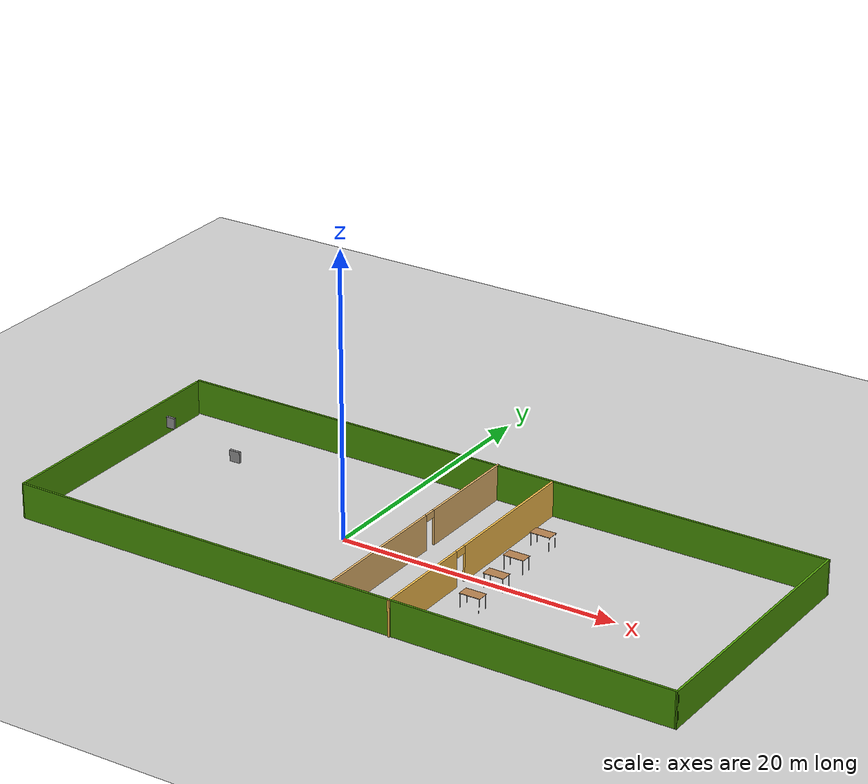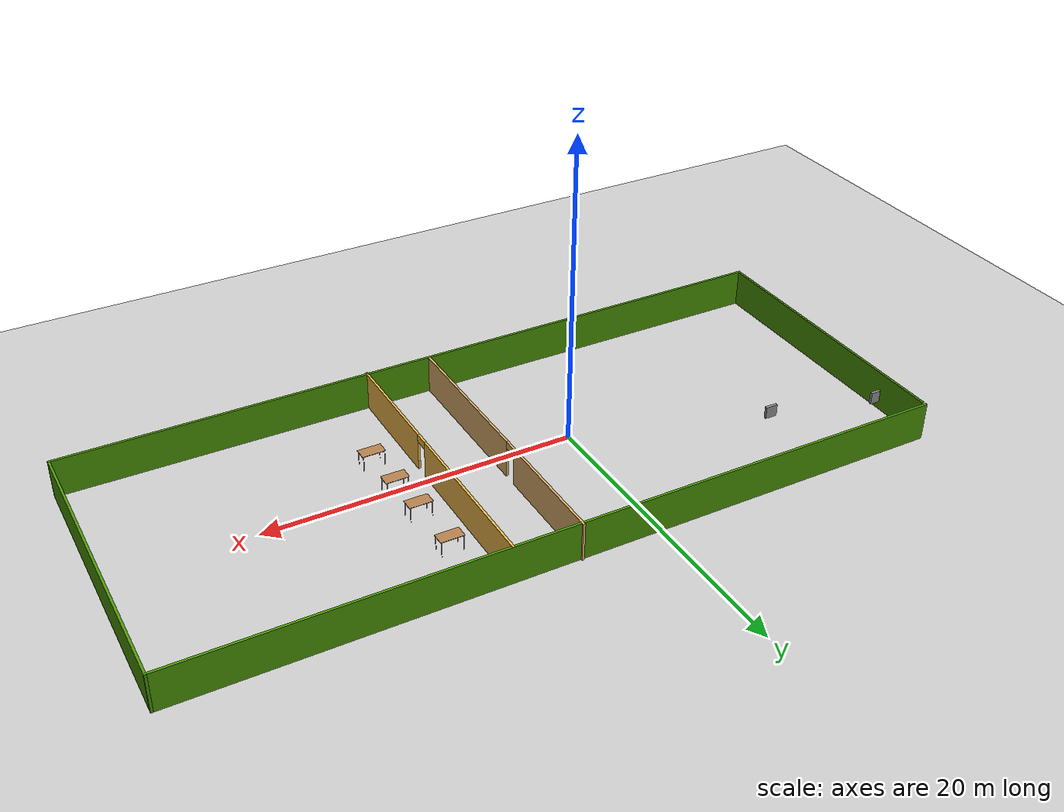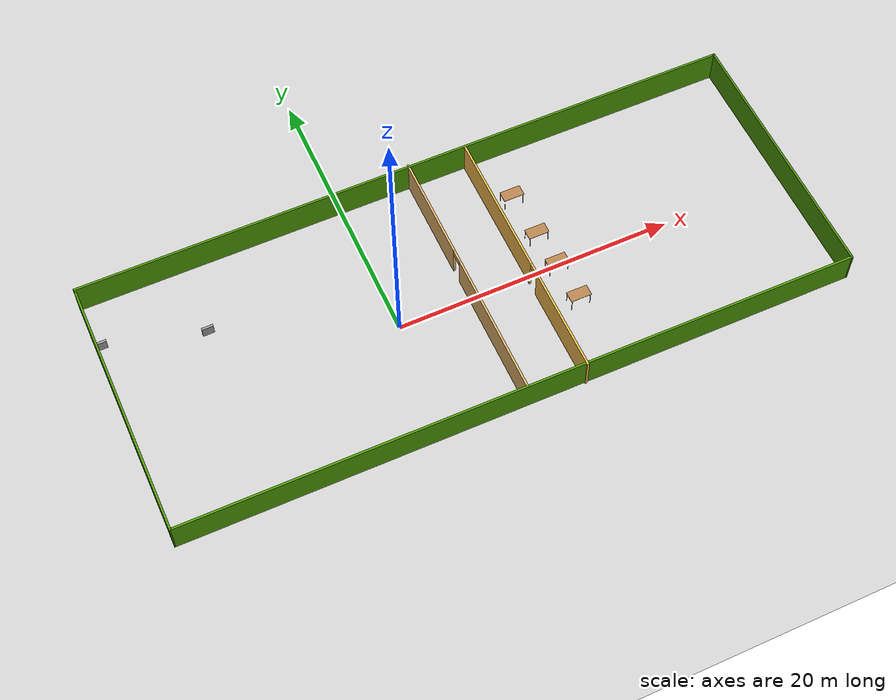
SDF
<sdf version="1.6">
 <world name="default">
  <model name="ground_plane">
   <static>1</static>
   <link name="link">
    <collision name="collision">
     <geometry><plane><normal>0 0 1</normal><size>100 100</size></plane></geometry>
     <surface>
      <contact><collide_bitmask>65535</collide_bitmask></contact>
      <friction><ode><mu>100</mu><mu2>50</mu2></ode></friction>
     </surface>
    </collision>
    <visual name="visual">
     <cast_shadows>0</cast_shadows>
     <geometry><plane><normal>0 0 1</normal><size>100 100</size></plane></geometry>
     <material>
      <script><uri>file://media/materials/scripts/gazebo.material</uri><name>Gazebo/Grey</name></script>
     </material>
    </visual>
   </link>
  </model>
  <model name="model">
   <pose>5.10532 0.675566 0 0 -0 0</pose>
   <link name="Wall_34">
    <collision name="Wall_34_Collision">
     <geometry><box><size>18.75 0.15 2.5</size></box></geometry>
     <pose>0 0 1.25 0 -0 0</pose>
    </collision>
    <visual name="Wall_34_Visual">
     <pose>0 0 1.25 0 -0 0</pose>
     <geometry><box><size>18.75 0.15 2.5</size></box></geometry>
     <material>
      <script><uri>file://media/materials/scripts/gazebo.material</uri><name>Gazebo/Grey</name></script>
      <ambient>0.305882 0.603922 0.0235294 1</ambient>
     </material>
     <meta><layer>0</layer></meta>
    </visual>
    <pose>-24.0501 -0.098528 0 0 -0 -1.5708</pose>
   </link>
   <link name="Wall_35">
    <collision name="Wall_35_Collision">
     <geometry><box><size>48.2504 0.15 2.5</size></box></geometry>
     <pose>0 0 1.25 0 -0 0</pose>
    </collision>
    <visual name="Wall_35_Visual">
     <pose>0 0 1.25 0 -0 0</pose>
     <geometry><box><size>48.2504 0.15 2.5</size></box></geometry>
     <material>
      <script><uri>file://media/materials/scripts/gazebo.material</uri><name>Gazebo/Grey</name></script>
      <ambient>0.305882 0.603922 0.0235294 1</ambient>
     </material>
     <meta><layer>0</layer></meta>
    </visual>
    <pose>0 -9.49677 0 0 -0 -0.004085</pose>
   </link>
   <link name="Wall_36">
    <collision name="Wall_36_Collision">
     <geometry><box><size>19.25 0.15 2.5</size></box></geometry>
     <pose>0 0 1.25 0 -0 0</pose>
    </collision>
    <visual name="Wall_36_Visual">
     <pose>0 0 1.25 0 -0 0</pose>
     <geometry><box><size>19.25 0.15 2.5</size></box></geometry>
     <material>
      <script><uri>file://media/materials/scripts/gazebo.material</uri><name>Gazebo/Grey</name></script>
      <ambient>0.305882 0.603922 0.0235294 1</ambient>
     </material>
     <meta><layer>0</layer></meta>
    </visual>
    <pose>24.0501 -0.045016 0 0 -0 1.5708</pose>
   </link>
   <link name="Wall_37">
    <collision name="Wall_37_Collision">
     <geometry><box><size>48.25 0.15 2.5</size></box></geometry>
     <pose>0 0 1.25 0 -0 0</pose>
    </collision>
    <visual name="Wall_37_Visual">
     <pose>0 0 1.25 0 -0 0</pose>
     <geometry><box><size>48.25 0.15 2.5</size></box></geometry>
     <material>
      <script><uri>file://media/materials/scripts/gazebo.material</uri><name>Gazebo/Grey</name></script>
      <ambient>0.305882 0.603922 0.0235294 1</ambient>
     </material>
     <meta><layer>0</layer></meta>
    </visual>
    <pose>0.00011 9.50498 0 0 -0 3.14159</pose>
   </link>
   <link name="Wall_39">
    <pose>0.06739 0.061528 0 0 -0 -1.5708</pose>
    <visual name="Wall_39_Visual_0">
     <pose>-5.7209 0 1.25 0 -0 0</pose>
     <geometry><box><size>7.80821 0.15 2.5</size></box></geometry>
     <material>
      <script><uri>file://media/materials/scripts/gazebo.material</uri><name>Gazebo/Grey</name></script>
      <ambient>0.913725 0.72549 0.431373 1</ambient>
     </material>
     <meta><layer>0</layer></meta>
    </visual>
    <collision name="Wall_39_Collision_0">
     <geometry><box><size>7.80821 0.15 2.5</size></box></geometry>
     <pose>-5.7209 0 1.25 0 -0 0</pose>
    </collision>
    <visual name="Wall_39_Visual_1">
     <pose>4.3541 0 1.25 0 -0 0</pose>
     <geometry><box><size>10.5418 0.15 2.5</size></box></geometry>
     <material>
      <script><uri>file://media/materials/scripts/gazebo.material</uri><name>Gazebo/Grey</name></script>
      <ambient>0.913725 0.72549 0.431373 1</ambient>
     </material>
     <meta><layer>0</layer></meta>
    </visual>
    <collision name="Wall_39_Collision_1">
     <geometry><box><size>10.5418 0.15 2.5</size></box></geometry>
     <pose>4.3541 0 1.25 0 -0 0</pose>
    </collision>
    <visual name="Wall_39_Visual_2">
     <pose>-1.36679 0 2.25 0 -0 0</pose>
     <geometry><box><size>0.9 0.15 0.5</size></box></geometry>
     <material>
      <script><uri>file://media/materials/scripts/gazebo.material</uri><name>Gazebo/Grey</name></script>
      <ambient>0.913725 0.72549 0.431373 1</ambient>
     </material>
     <meta><layer>0</layer></meta>
    </visual>
    <collision name="Wall_39_Collision_2">
     <geometry><box><size>0.9 0.15 0.5</size></box></geometry>
     <pose>-1.36679 0 2.25 0 -0 0</pose>
    </collision>
   </link>
   <link name="Wall_41">
    <pose>4.31281 -0.061528 0 0 -0 -1.5708</pose>
    <visual name="Wall_41_Visual_0">
     <pose>-4.24423 0 1.25 0 -0 0</pose>
     <geometry><box><size>10.7615 0.15 2.5</size></box></geometry>
     <material>
      <script><uri>file://media/materials/scripts/gazebo.material</uri><name>Gazebo/Grey</name></script>
      <ambient>1 0.764706 0.305882 1</ambient>
     </material>
     <meta><layer>0</layer></meta>
    </visual>
    <collision name="Wall_41_Collision_0">
     <geometry><box><size>10.7615 0.15 2.5</size></box></geometry>
     <pose>-4.24423 0 1.25 0 -0 0</pose>
    </collision>
    <visual name="Wall_41_Visual_1">
     <pose>5.83077 0 1.25 0 -0 0</pose>
     <geometry><box><size>7.58845 0.15 2.5</size></box></geometry>
     <material>
      <script><uri>file://media/materials/scripts/gazebo.material</uri><name>Gazebo/Grey</name></script>
      <ambient>1 0.764706 0.305882 1</ambient>
     </material>
     <meta><layer>0</layer></meta>
    </visual>
    <collision name="Wall_41_Collision_1">
     <geometry><box><size>7.58845 0.15 2.5</size></box></geometry>
     <pose>5.83077 0 1.25 0 -0 0</pose>
    </collision>
    <visual name="Wall_41_Visual_2">
     <pose>1.58655 0 2.25 0 -0 0</pose>
     <geometry><box><size>0.9 0.15 0.5</size></box></geometry>
     <material>
      <script><uri>file://media/materials/scripts/gazebo.material</uri><name>Gazebo/Grey</name></script>
      <ambient>1 0.764706 0.305882 1</ambient>
     </material>
     <meta><layer>0</layer></meta>
    </visual>
    <collision name="Wall_41_Collision_2">
     <geometry><box><size>0.9 0.15 0.5</size></box></geometry>
     <pose>1.58655 0 2.25 0 -0 0</pose>
    </collision>
   </link>
   <link name="Window_0">
    <collision name="Window_0_Collision">
     <geometry><box><size>0.8 0.17 0.8</size></box></geometry>
     <pose>0 0 0.4 0 -0 0</pose>
    </collision>
    <visual name="Window_0_Visual">
     <pose>0 0 0.4 0 -0 0</pose>
     <geometry><box><size>0.8 0.17 0.8</size></box></geometry>
     <material>
      <script><uri>file://media/materials/scripts/gazebo.material</uri><name>Gazebo/Grey</name></script>
     </material>
    </visual>
    <pose>-16.9341 3.87067 0.5 0 -0 0</pose>
   </link>
   <link name="Window_1">
    <collision name="Window_1_Collision">
     <geometry><box><size>0.8 0.17 0.8</size></box></geometry>
     <pose>0 0 0.4 0 -0 0</pose>
    </collision>
    <visual name="Window_1_Visual">
     <pose>0 0 0.4 0 -0 0</pose>
     <geometry><box><size>0.8 0.17 0.8</size></box></geometry>
     <material>
      <script><uri>file://media/materials/scripts/gazebo.material</uri><name>Gazebo/Grey</name></script>
     </material>
    </visual>
    <pose>-23.7289 5.68976 0.5 0 -0 0</pose>
   </link>
   <static>1</static>
  </model>
  <model name="table_clone_2">
   <static>1</static>
   <link name="link">
    <collision name="surface">
     <pose>0 0 1 0 -0 0</pose>
     <geometry><box><size>1.5 0.8 0.03</size></box></geometry>
     <surface><friction><ode><mu>0.6</mu><mu2>0.6</mu2></ode></friction></surface>
    </collision>
    <visual name="visual1">
     <pose>0 0 1 0 -0 0</pose>
     <geometry><box><size>1.5 0.8 0.03</size></box></geometry>
     <material>
      <script><uri>file://media/materials/scripts/gazebo.material</uri><name>Gazebo/Wood</name></script>
     </material>
    </visual>
    <collision name="front_left_leg">
     <pose>0.68 0.38 0.5 0 -0 0</pose>
     <geometry><cylinder><radius>0.02</radius><length>1</length></cylinder></geometry>
    </collision>
    <visual name="front_left_leg">
     <pose>0.68 0.38 0.5 0 -0 0</pose>
     <geometry><cylinder><radius>0.02</radius><length>1</length></cylinder></geometry>
     <material>
      <script><uri>file://media/materials/scripts/gazebo.material</uri><name>Gazebo/Grey</name></script>
     </material>
    </visual>
    <collision name="front_right_leg">
     <pose>0.68 -0.38 0.5 0 -0 0</pose>
     <geometry><cylinder><radius>0.02</radius><length>1</length></cylinder></geometry>
    </collision>
    <visual name="front_right_leg">
     <pose>0.68 -0.38 0.5 0 -0 0</pose>
     <geometry><cylinder><radius>0.02</radius><length>1</length></cylinder></geometry>
     <material>
      <script><uri>file://media/materials/scripts/gazebo.material</uri><name>Gazebo/Grey</name></script>
     </material>
    </visual>
    <collision name="back_right_leg">
     <pose>-0.68 -0.38 0.5 0 -0 0</pose>
     <geometry><cylinder><radius>0.02</radius><length>1</length></cylinder></geometry>
    </collision>
    <visual name="back_right_leg">
     <pose>-0.68 -0.38 0.5 0 -0 0</pose>
     <geometry><cylinder><radius>0.02</radius><length>1</length></cylinder></geometry>
     <material>
      <script><uri>file://media/materials/scripts/gazebo.material</uri><name>Gazebo/Grey</name></script>
     </material>
    </visual>
    <collision name="back_left_leg">
     <pose>-0.68 0.38 0.5 0 -0 0</pose>
     <geometry><cylinder><radius>0.02</radius><length>1</length></cylinder></geometry>
    </collision>
    <visual name="back_left_leg">
     <pose>-0.68 0.38 0.5 0 -0 0</pose>
     <geometry><cylinder><radius>0.02</radius><length>1</length></cylinder></geometry>
     <material>
      <script><uri>file://media/materials/scripts/gazebo.material</uri><name>Gazebo/Grey</name></script>
     </material>
    </visual>
   </link>
   <pose>11.7426 -3.14317 0 0 -0 0</pose>
  </model>
  <model name="table_clone_3">
   <static>1</static>
   <link name="link">
    <collision name="surface">
     <pose>0 0 1 0 -0 0</pose>
     <geometry><box><size>1.5 0.8 0.03</size></box></geometry>
     <surface><friction><ode><mu>0.6</mu><mu2>0.6</mu2></ode></friction></surface>
    </collision>
    <visual name="visual1">
     <pose>0 0 1 0 -0 0</pose>
     <geometry><box><size>1.5 0.8 0.03</size></box></geometry>
     <material>
      <script><uri>file://media/materials/scripts/gazebo.material</uri><name>Gazebo/Wood</name></script>
     </material>
    </visual>
    <collision name="front_left_leg">
     <pose>0.68 0.38 0.5 0 -0 0</pose>
     <geometry><cylinder><radius>0.02</radius><length>1</length></cylinder></geometry>
    </collision>
    <visual name="front_left_leg">
     <pose>0.68 0.38 0.5 0 -0 0</pose>
     <geometry><cylinder><radius>0.02</radius><length>1</length></cylinder></geometry>
     <material>
      <script><uri>file://media/materials/scripts/gazebo.material</uri><name>Gazebo/Grey</name></script>
     </material>
    </visual>
    <collision name="front_right_leg">
     <pose>0.68 -0.38 0.5 0 -0 0</pose>
     <geometry><cylinder><radius>0.02</radius><length>1</length></cylinder></geometry>
    </collision>
    <visual name="front_right_leg">
     <pose>0.68 -0.38 0.5 0 -0 0</pose>
     <geometry><cylinder><radius>0.02</radius><length>1</length></cylinder></geometry>
     <material>
      <script><uri>file://media/materials/scripts/gazebo.material</uri><name>Gazebo/Grey</name></script>
     </material>
    </visual>
    <collision name="back_right_leg">
     <pose>-0.68 -0.38 0.5 0 -0 0</pose>
     <geometry><cylinder><radius>0.02</radius><length>1</length></cylinder></geometry>
    </collision>
    <visual name="back_right_leg">
     <pose>-0.68 -0.38 0.5 0 -0 0</pose>
     <geometry><cylinder><radius>0.02</radius><length>1</length></cylinder></geometry>
     <material>
      <script><uri>file://media/materials/scripts/gazebo.material</uri><name>Gazebo/Grey</name></script>
     </material>
    </visual>
    <collision name="back_left_leg">
     <pose>-0.68 0.38 0.5 0 -0 0</pose>
     <geometry><cylinder><radius>0.02</radius><length>1</length></cylinder></geometry>
    </collision>
    <visual name="back_left_leg">
     <pose>-0.68 0.38 0.5 0 -0 0</pose>
     <geometry><cylinder><radius>0.02</radius><length>1</length></cylinder></geometry>
     <material>
      <script><uri>file://media/materials/scripts/gazebo.material</uri><name>Gazebo/Grey</name></script>
     </material>
    </visual>
   </link>
   <pose>11.5797 -0.149289 0 0 -0 0</pose>
  </model>
  <model name="table_clone_4">
   <static>1</static>
   <link name="link">
    <collision name="surface">
     <pose>0 0 1 0 -0 0</pose>
     <geometry><box><size>1.5 0.8 0.03</size></box></geometry>
     <surface><friction><ode><mu>0.6</mu><mu2>0.6</mu2></ode></friction></surface>
    </collision>
    <visual name="visual1">
     <pose>0 0 1 0 -0 0</pose>
     <geometry><box><size>1.5 0.8 0.03</size></box></geometry>
     <material>
      <script><uri>file://media/materials/scripts/gazebo.material</uri><name>Gazebo/Wood</name></script>
     </material>
    </visual>
    <collision name="front_left_leg">
     <pose>0.68 0.38 0.5 0 -0 0</pose>
     <geometry><cylinder><radius>0.02</radius><length>1</length></cylinder></geometry>
    </collision>
    <visual name="front_left_leg">
     <pose>0.68 0.38 0.5 0 -0 0</pose>
     <geometry><cylinder><radius>0.02</radius><length>1</length></cylinder></geometry>
     <material>
      <script><uri>file://media/materials/scripts/gazebo.material</uri><name>Gazebo/Grey</name></script>
     </material>
    </visual>
    <collision name="front_right_leg">
     <pose>0.68 -0.38 0.5 0 -0 0</pose>
     <geometry><cylinder><radius>0.02</radius><length>1</length></cylinder></geometry>
    </collision>
    <visual name="front_right_leg">
     <pose>0.68 -0.38 0.5 0 -0 0</pose>
     <geometry><cylinder><radius>0.02</radius><length>1</length></cylinder></geometry>
     <material>
      <script><uri>file://media/materials/scripts/gazebo.material</uri><name>Gazebo/Grey</name></script>
     </material>
    </visual>
    <collision name="back_right_leg">
     <pose>-0.68 -0.38 0.5 0 -0 0</pose>
     <geometry><cylinder><radius>0.02</radius><length>1</length></cylinder></geometry>
    </collision>
    <visual name="back_right_leg">
     <pose>-0.68 -0.38 0.5 0 -0 0</pose>
     <geometry><cylinder><radius>0.02</radius><length>1</length></cylinder></geometry>
     <material>
      <script><uri>file://media/materials/scripts/gazebo.material</uri><name>Gazebo/Grey</name></script>
     </material>
    </visual>
    <collision name="back_left_leg">
     <pose>-0.68 0.38 0.5 0 -0 0</pose>
     <geometry><cylinder><radius>0.02</radius><length>1</length></cylinder></geometry>
    </collision>
    <visual name="back_left_leg">
     <pose>-0.68 0.38 0.5 0 -0 0</pose>
     <geometry><cylinder><radius>0.02</radius><length>1</length></cylinder></geometry>
     <material>
      <script><uri>file://media/materials/scripts/gazebo.material</uri><name>Gazebo/Grey</name></script>
     </material>
    </visual>
   </link>
   <pose>11.3672 2.57097 0 0 -0 0</pose>
  </model>
  <model name="table_clone_5">
   <static>1</static>
   <link name="link">
    <collision name="surface">
     <pose>0 0 1 0 -0 0</pose>
     <geometry><box><size>1.5 0.8 0.03</size></box></geometry>
     <surface><friction><ode><mu>0.6</mu><mu2>0.6</mu2></ode></friction></surface>
    </collision>
    <visual name="visual1">
     <pose>0 0 1 0 -0 0</pose>
     <geometry><box><size>1.5 0.8 0.03</size></box></geometry>
     <material>
      <script><uri>file://media/materials/scripts/gazebo.material</uri><name>Gazebo/Wood</name></script>
     </material>
    </visual>
    <collision name="front_left_leg">
     <pose>0.68 0.38 0.5 0 -0 0</pose>
     <geometry><cylinder><radius>0.02</radius><length>1</length></cylinder></geometry>
    </collision>
    <visual name="front_left_leg">
     <pose>0.68 0.38 0.5 0 -0 0</pose>
     <geometry><cylinder><radius>0.02</radius><length>1</length></cylinder></geometry>
     <material>
      <script><uri>file://media/materials/scripts/gazebo.material</uri><name>Gazebo/Grey</name></script>
     </material>
    </visual>
    <collision name="front_right_leg">
     <pose>0.68 -0.38 0.5 0 -0 0</pose>
     <geometry><cylinder><radius>0.02</radius><length>1</length></cylinder></geometry>
    </collision>
    <visual name="front_right_leg">
     <pose>0.68 -0.38 0.5 0 -0 0</pose>
     <geometry><cylinder><radius>0.02</radius><length>1</length></cylinder></geometry>
     <material>
      <script><uri>file://media/materials/scripts/gazebo.material</uri><name>Gazebo/Grey</name></script>
     </material>
    </visual>
    <collision name="back_right_leg">
     <pose>-0.68 -0.38 0.5 0 -0 0</pose>
     <geometry><cylinder><radius>0.02</radius><length>1</length></cylinder></geometry>
    </collision>
    <visual name="back_right_leg">
     <pose>-0.68 -0.38 0.5 0 -0 0</pose>
     <geometry><cylinder><radius>0.02</radius><length>1</length></cylinder></geometry>
     <material>
      <script><uri>file://media/materials/scripts/gazebo.material</uri><name>Gazebo/Grey</name></script>
     </material>
    </visual>
    <collision name="back_left_leg">
     <pose>-0.68 0.38 0.5 0 -0 0</pose>
     <geometry><cylinder><radius>0.02</radius><length>1</length></cylinder></geometry>
    </collision>
    <visual name="back_left_leg">
     <pose>-0.68 0.38 0.5 0 -0 0</pose>
     <geometry><cylinder><radius>0.02</radius><length>1</length></cylinder></geometry>
     <material>
      <script><uri>file://media/materials/scripts/gazebo.material</uri><name>Gazebo/Grey</name></script>
     </material>
    </visual>
   </link>
   <pose>11.1606 6.11112 0 0 -0 0</pose>
  </model>
 </world>
</sdf>
